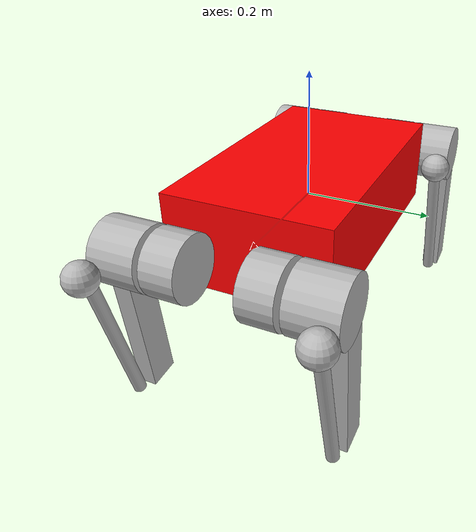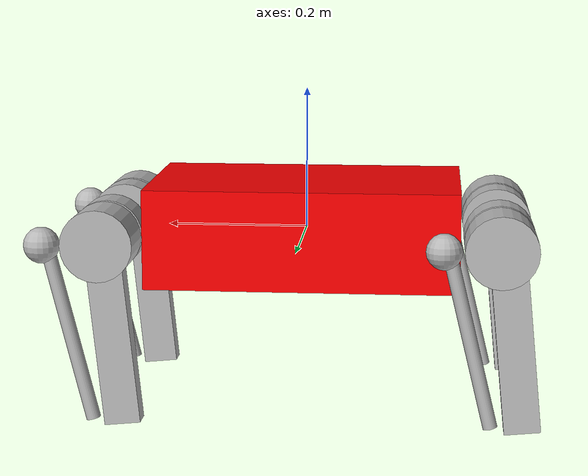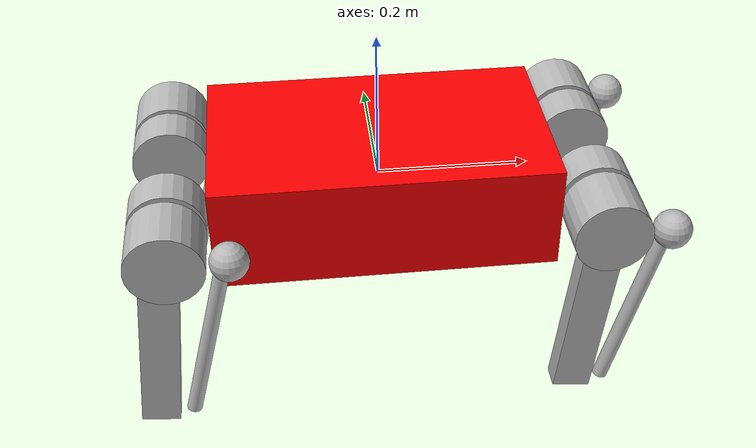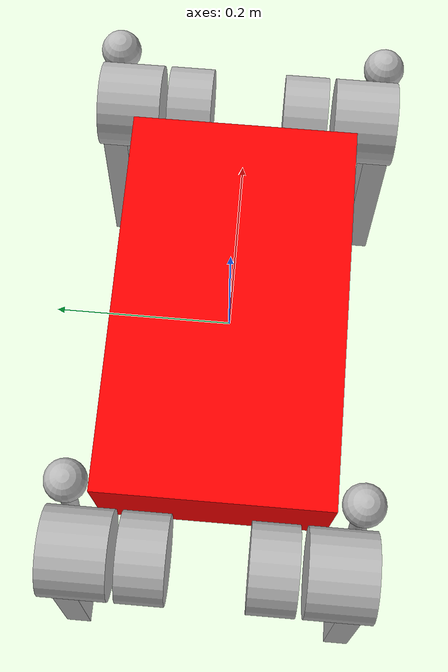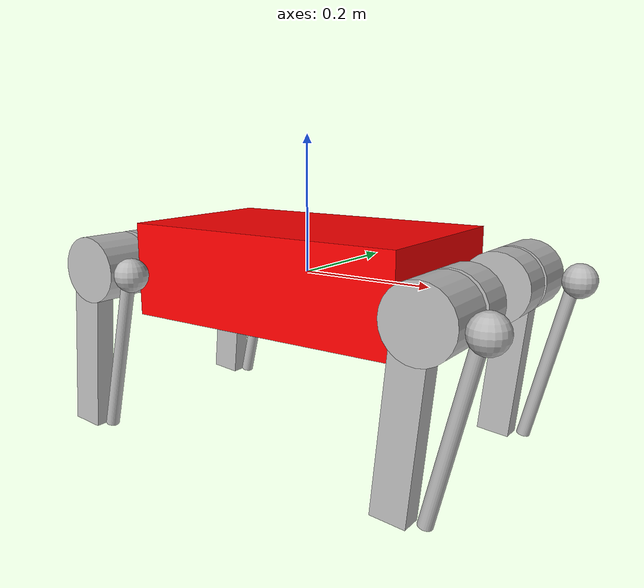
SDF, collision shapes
<sdf version='1.6'>
  <model name='Nomad'>
    <link name='base_link'>
      <pose frame=''>0 0 0 0 -0 0</pose>
      <inertial>
        <pose frame=''>0 0 0.000159 0 -0 0</pose>
        <mass>3.1127</mass>
        <inertia>
          <ixx>0.0303631</ixx>
          <ixy>-1.39577e-09</ixy>
          <ixz>5.33227e-17</ixz>
          <iyy>0.0951521</iyy>
          <iyz>-6.15067e-17</iyz>
          <izz>0.110368</izz>
        </inertia>
      </inertial>
      <collision name='base_link_collision'>
        <pose frame=''>0 0 0 0 -0 0</pose>
        <geometry>
          <box>
            <size>0.44 0.26 0.14</size>
          </box>
        </geometry>
      </collision>
      <visual name='base_link_visual'>
        <pose frame=''>0 0 0 0 -0 0</pose>
        <geometry>
          <mesh>
            <scale>0.001 0.001 0.001</scale>
            <uri>model://Nomad/meshes/base_link.stl</uri>
          </mesh>
        </geometry>
        <material>

          <ambient>1 0 0 1</ambient>

          <diffuse>1 0 0 1</diffuse>

          <specular>0.1 0.1 0.1 1</specular>

          <emissive>0 0 0 0</emissive>

        </material>
      </visual>
      <visual name='base_link_fixed_joint_lump__b_haa_motor_FL_visual_1'>
        <pose frame=''>0 0 0 0 -0 0</pose>
        <geometry>
          <mesh>
            <scale>0.001 0.001 0.001</scale>
            <uri>model://Nomad/meshes/b_haa_motor_FL.stl</uri>
          </mesh>
        </geometry>
      </visual>
      <visual name='base_link_fixed_joint_lump__b_haa_motor_FR_visual_2'>
        <pose frame=''>0 0 0 0 -0 0</pose>
        <geometry>
          <mesh>
            <scale>0.001 0.001 0.001</scale>
            <uri>model://Nomad/meshes/b_haa_motor_FR.stl</uri>
          </mesh>
        </geometry>
      </visual>
      <visual name='base_link_fixed_joint_lump__b_haa_motor_RL_visual_3'>
        <pose frame=''>0 0 0 0 -0 0</pose>
        <geometry>
          <mesh>
            <scale>0.001 0.001 0.001</scale>
            <uri>model://Nomad/meshes/b_haa_motor_RL.stl</uri>
          </mesh>
        </geometry>
      </visual>
      <visual name='base_link_fixed_joint_lump__b_haa_motor_RR_visual_4'>
        <pose frame=''>0 0 0 0 -0 0</pose>
        <geometry>
          <mesh>
            <scale>0.001 0.001 0.001</scale>
            <uri>model://Nomad/meshes/b_haa_motor_RR.stl</uri>
          </mesh>
        </geometry>
      </visual>
    </link>
    <link name='b_hfe_motor_FL'>
      <pose frame=''>0.217 0.07 0 0 -0 0</pose>
      <inertial>
        <pose frame=''>0.048378 0.004377 0.00043 0 -0 0</pose>
        <mass>0.287587</mass>
        <inertia>
          <ixx>0.000280355</ixx>
          <ixy>-1.2113e-05</ixy>
          <ixz>-1.18873e-06</ixz>
          <iyy>0.000473881</iyy>
          <iyz>3.05115e-06</iyz>
          <izz>0.000361322</izz>
        </inertia>
      </inertial>
      <collision name='b_hfe_motor_FL_collision'>
        <pose frame=''>0.058 0 0 1.5708 -0 0</pose>
        <geometry>
          <cylinder>
            <length>0.053</length>
            <radius>0.05</radius>
          </cylinder>
        </geometry>
      </collision>
      <visual name='b_hfe_motor_FL_visual'>
        <pose frame=''>-0.217 -0.07 -0 0 -0 0</pose>
        <geometry>
          <mesh>
            <scale>0.001 0.001 0.001</scale>
            <uri>model://Nomad/meshes/b_hfe_motor_FL.stl</uri>
          </mesh>
        </geometry>
      </visual>
    </link>
    <joint name='j_haa_FL' type='revolute'>
      <child>b_hfe_motor_FL</child>
      <parent>base_link</parent>
      <axis>
        <xyz>-1 0 0</xyz>
        <limit>
          <lower>-1e+16</lower>
          <upper>1e+16</upper>
        </limit>
        <dynamics>
          <damping>0.2</damping>
          <friction>0</friction>
          <spring_reference>0</spring_reference>
          <spring_stiffness>0</spring_stiffness>
        </dynamics>
        <use_parent_model_frame>1</use_parent_model_frame>
      </axis>
    </joint>
    <link name='b_kfe_motor_FL'>
      <pose frame=''>0.275 0.0945 0 0 -0 0</pose>
      <inertial>
        <pose frame=''>-0.008314 0.054672 -0.044525 0 -0 0</pose>
        <mass>0.589636</mass>
        <inertia>
          <ixx>0.00372285</ixx>
          <ixy>3.74238e-05</ixy>
          <ixz>-0.000336267</ixz>
          <iyy>0.00373948</iyy>
          <iyz>0.000433463</iyz>
          <izz>0.00073608</izz>
        </inertia>
      </inertial>
      <collision name='b_kfe_motor_FL_collision'>
        <pose frame=''>0 0.048 0 1.5708 -0 0</pose>
        <geometry>
          <cylinder>
            <length>0.075</length>
            <radius>0.05</radius>
          </cylinder>
        </geometry>
      </collision>
      <collision name='b_kfe_motor_FL_fixed_joint_lump__b_upper_leg_FL_collision_1'>
        <pose frame=''>-0.02 0.0693 -0.125 0 0.1 0</pose>
        <geometry>
          <box>
            <size>0.05 0.03 0.25</size>
          </box>
        </geometry>
      </collision>
      <visual name='b_kfe_motor_FL_visual'>
        <pose frame=''>-0.275 -0.0945 -0 0 -0 0</pose>
        <geometry>
          <mesh>
            <scale>0.001 0.001 0.001</scale>
            <uri>model://Nomad/meshes/b_kfe_motor_FL.stl</uri>
          </mesh>
        </geometry>
      </visual>
      <visual name='b_kfe_motor_FL_fixed_joint_lump__b_upper_leg_FL_visual_1'>
        <pose frame=''>-0.275 -0.0945 0 0 -0 0</pose>
        <geometry>
          <mesh>
            <scale>0.001 0.001 0.001</scale>
            <uri>model://Nomad/meshes/b_upper_leg_FL.stl</uri>
          </mesh>
        </geometry>
      </visual>
    </link>
    <joint name='j_hfe_FL' type='revolute'>
      <child>b_kfe_motor_FL</child>
      <parent>b_hfe_motor_FL</parent>
      <axis>
        <xyz>0 -1 0</xyz>
        <limit>
          <lower>-1e+16</lower>
          <upper>1e+16</upper>
        </limit>
        <dynamics>
          <damping>0.2</damping>
          <friction>0</friction>
          <spring_reference>0</spring_reference>
          <spring_stiffness>0</spring_stiffness>
        </dynamics>
        <use_parent_model_frame>1</use_parent_model_frame>
      </axis>
    </joint>
    <link name='b_lower_leg_FL'>
      <pose frame=''>0.27482 0.1545 -0.25 0 -0 0</pose>
      <inertial>
        <pose frame=''>0.037525 0.010921 0.12398 0 -0 0</pose>
        <mass>0.177139</mass>
        <inertia>
          <ixx>0.00210533</ixx>
          <ixy>-4.0181e-07</ixy>
          <ixz>-0.000615045</ixz>
          <iyy>0.00229935</iyy>
          <iyz>-1.39942e-06</iyz>
          <izz>0.000209299</izz>
        </inertia>
      </inertial>
      <collision name='b_lower_leg_FL_collision'>
        <pose frame=''>0.042 0.0095 0.13 0 0.24 0</pose>
        <geometry>
          <cylinder>
            <length>0.26</length>
            <radius>0.01</radius>
          </cylinder>
        </geometry>
      </collision>
      <collision name='b_lower_leg_FL_fixed_joint_lump__b_foot_FL_collision_1'>
        <pose frame=''>0.077613 0.011 0.24861 0 -0 0</pose>
        <geometry>
          <sphere>
            <radius>0.025</radius>
          </sphere>
        </geometry>
      </collision>
      <visual name='b_lower_leg_FL_visual'>
        <pose frame=''>-0.27482 -0.1545 0.25 0 -0 0</pose>
        <geometry>
          <mesh>
            <scale>0.001 0.001 0.001</scale>
            <uri>model://Nomad/meshes/b_lower_leg_FL.stl</uri>
          </mesh>
        </geometry>
      </visual>
      <visual name='b_lower_leg_FL_fixed_joint_lump__b_foot_FL_visual_1'>
        <pose frame=''>-0.27482 -0.1545 0.25 0 -0 0</pose>
        <geometry>
          <mesh>
            <scale>0.001 0.001 0.001</scale>
            <uri>model://Nomad/meshes/b_foot_FL.stl</uri>
          </mesh>
        </geometry>
      </visual>
    </link>
    <joint name='j_kfe_FL' type='revolute'>
      <child>b_lower_leg_FL</child>
      <parent>b_kfe_motor_FL</parent>
      <axis>
        <xyz>0 -1 0</xyz>
        <limit>
          <lower>-2.2</lower>
          <upper>0</upper>
          <effort>50</effort>
          <velocity>400</velocity>
        </limit>
        <dynamics>
          <damping>0.2</damping>
          <friction>0</friction>
          <spring_reference>0</spring_reference>
          <spring_stiffness>0</spring_stiffness>
        </dynamics>
        <use_parent_model_frame>1</use_parent_model_frame>
      </axis>
    </joint>
    <link name='b_hfe_motor_FR'>
      <pose frame=''>0.217 -0.07 0 0 -0 0</pose>
      <inertial>
        <pose frame=''>0.048378 -0.004377 0.00043 0 -0 0</pose>
        <mass>0.287587</mass>
        <inertia>
          <ixx>0.000280355</ixx>
          <ixy>1.2113e-05</ixy>
          <ixz>-1.18873e-06</ixz>
          <iyy>0.000473881</iyy>
          <iyz>-3.05115e-06</iyz>
          <izz>0.000361322</izz>
        </inertia>
      </inertial>
      <collision name='b_hfe_motor_FR_collision'>
        <pose frame=''>0.058 0 0 1.5708 -0 0</pose>
        <geometry>
          <cylinder>
            <length>0.053</length>
            <radius>0.05</radius>
          </cylinder>
        </geometry>
      </collision>
      <visual name='b_hfe_motor_FR_visual'>
        <pose frame=''>-0.217 0.07 -0 0 -0 0</pose>
        <geometry>
          <mesh>
            <scale>0.001 0.001 0.001</scale>
            <uri>model://Nomad/meshes/b_hfe_motor_FR.stl</uri>
          </mesh>
        </geometry>
      </visual>
    </link>
    <joint name='j_haa_FR' type='revolute'>
      <child>b_hfe_motor_FR</child>
      <parent>base_link</parent>
      <axis>
        <xyz>-1 0 0</xyz>
        <limit>
          <lower>-1e+16</lower>
          <upper>1e+16</upper>
        </limit>
        <dynamics>
          <damping>0.2</damping>
          <friction>0</friction>
          <spring_reference>0</spring_reference>
          <spring_stiffness>0</spring_stiffness>
        </dynamics>
        <use_parent_model_frame>1</use_parent_model_frame>
      </axis>
    </joint>
    <link name='b_kfe_motor_FR'>
      <pose frame=''>0.275 -0.0945 0 0 -0 0</pose>
      <inertial>
        <pose frame=''>-0.008314 -0.054672 -0.044525 0 -0 0</pose>
        <mass>0.589639</mass>
        <inertia>
          <ixx>0.0037229</ixx>
          <ixy>-3.74172e-05</ixy>
          <ixz>-0.000336241</ixz>
          <iyy>0.0037396</iyy>
          <iyz>-0.000433467</iyz>
          <izz>0.000736153</izz>
        </inertia>
      </inertial>
      <collision name='b_kfe_motor_FR_collision'>
        <pose frame=''>0 -0.048 0 1.5708 -0 0</pose>
        <geometry>
          <cylinder>
            <length>0.075</length>
            <radius>0.05</radius>
          </cylinder>
        </geometry>
      </collision>
      <collision name='b_kfe_motor_FR_fixed_joint_lump__b_upper_leg_FR_collision_1'>
        <pose frame=''>-0.02 -0.0693 -0.125 0 0.1 0</pose>
        <geometry>
          <box>
            <size>0.05 0.03 0.25</size>
          </box>
        </geometry>
      </collision>
      <visual name='b_kfe_motor_FR_visual'>
        <pose frame=''>-0.275 0.0945 -0 0 -0 0</pose>
        <geometry>
          <mesh>
            <scale>0.001 0.001 0.001</scale>
            <uri>model://Nomad/meshes/b_kfe_motor_FR.stl</uri>
          </mesh>
        </geometry>
      </visual>
      <visual name='b_kfe_motor_FR_fixed_joint_lump__b_upper_leg_FR_visual_1'>
        <pose frame=''>-0.275 0.0945 0 0 -0 0</pose>
        <geometry>
          <mesh>
            <scale>0.001 0.001 0.001</scale>
            <uri>model://Nomad/meshes/b_upper_leg_FR.stl</uri>
          </mesh>
        </geometry>
      </visual>
    </link>
    <joint name='j_hfe_FR' type='revolute'>
      <child>b_kfe_motor_FR</child>
      <parent>b_hfe_motor_FR</parent>
      <axis>
        <xyz>0 1 0</xyz>
        <limit>
          <lower>-1e+16</lower>
          <upper>1e+16</upper>
        </limit>
        <dynamics>
          <damping>0.2</damping>
          <friction>0</friction>
          <spring_reference>0</spring_reference>
          <spring_stiffness>0</spring_stiffness>
        </dynamics>
        <use_parent_model_frame>1</use_parent_model_frame>
      </axis>
    </joint>
    <link name='b_lower_leg_FR'>
      <pose frame=''>0.27482 -0.1545 -0.25 0 -0 0</pose>
      <inertial>
        <pose frame=''>0.037525 -0.011079 0.12398 0 -0 0</pose>
        <mass>0.177139</mass>
        <inertia>
          <ixx>0.00210533</ixx>
          <ixy>-4.0181e-07</ixy>
          <ixz>-0.000615045</ixz>
          <iyy>0.00229935</iyy>
          <iyz>-1.39942e-06</iyz>
          <izz>0.000209299</izz>
        </inertia>
      </inertial>
      <collision name='b_lower_leg_FR_collision'>
        <pose frame=''>0.042 -0.0095 0.13 0 0.24 0</pose>
        <geometry>
          <cylinder>
            <length>0.26</length>
            <radius>0.01</radius>
          </cylinder>
        </geometry>
      </collision>
      <collision name='b_lower_leg_FR_fixed_joint_lump__b_foot_FR_collision_1'>
        <pose frame=''>0.077613 -0.011 0.24861 0 -0 0</pose>
        <geometry>
          <sphere>
            <radius>0.025</radius>
          </sphere>
        </geometry>
      </collision>
      <visual name='b_lower_leg_FR_visual'>
        <pose frame=''>-0.27482 0.1545 0.25 0 -0 0</pose>
        <geometry>
          <mesh>
            <scale>0.001 0.001 0.001</scale>
            <uri>model://Nomad/meshes/b_lower_leg_FR.stl</uri>
          </mesh>
        </geometry>
      </visual>
      <visual name='b_lower_leg_FR_fixed_joint_lump__b_foot_FR_visual_1'>
        <pose frame=''>-0.27482 0.1545 0.25 0 -0 0</pose>
        <geometry>
          <mesh>
            <scale>0.001 0.001 0.001</scale>
            <uri>model://Nomad/meshes/b_foot_FR.stl</uri>
          </mesh>
        </geometry>
      </visual>
    </link>
    <joint name='j_kfe_FR' type='revolute'>
      <child>b_lower_leg_FR</child>
      <parent>b_kfe_motor_FR</parent>
      <axis>
        <xyz>0 1 0</xyz>
        <limit>
          <lower>0</lower>
          <upper>2.2</upper>
          <effort>50</effort>
          <velocity>400</velocity>
        </limit>
        <dynamics>
          <damping>0.2</damping>
          <friction>0</friction>
          <spring_reference>0</spring_reference>
          <spring_stiffness>0</spring_stiffness>
        </dynamics>
        <use_parent_model_frame>1</use_parent_model_frame>
      </axis>
    </joint>
    <link name='b_hfe_motor_RL'>
      <pose frame=''>-0.217 0.07 0 0 -0 0</pose>
      <inertial>
        <pose frame=''>-0.048378 0.004377 0.00043 0 -0 0</pose>
        <mass>0.287587</mass>
        <inertia>
          <ixx>0.000280355</ixx>
          <ixy>1.2113e-05</ixy>
          <ixz>1.18873e-06</ixz>
          <iyy>0.000473881</iyy>
          <iyz>3.05115e-06</iyz>
          <izz>0.000361322</izz>
        </inertia>
      </inertial>
      <collision name='b_hfe_motor_RL_collision'>
        <pose frame=''>-0.058 0 0 1.5708 -0 0</pose>
        <geometry>
          <cylinder>
            <length>0.053</length>
            <radius>0.05</radius>
          </cylinder>
        </geometry>
      </collision>
      <visual name='b_hfe_motor_RL_visual'>
        <pose frame=''>0.217 -0.07 -0 0 -0 0</pose>
        <geometry>
          <mesh>
            <scale>0.001 0.001 0.001</scale>
            <uri>model://Nomad/meshes/b_hfe_motor_RL.stl</uri>
          </mesh>
        </geometry>
      </visual>
    </link>
    <joint name='j_haa_RL' type='revolute'>
      <child>b_hfe_motor_RL</child>
      <parent>base_link</parent>
      <axis>
        <xyz>1 0 0</xyz>
        <limit>
          <lower>-1e+16</lower>
          <upper>1e+16</upper>
        </limit>
        <dynamics>
          <damping>0.2</damping>
          <friction>0</friction>
          <spring_reference>0</spring_reference>
          <spring_stiffness>0</spring_stiffness>
        </dynamics>
        <use_parent_model_frame>1</use_parent_model_frame>
      </axis>
    </joint>
    <link name='b_kfe_motor_RL'>
      <pose frame=''>-0.275 0.0945 0 0 -0 0</pose>
      <inertial>
        <pose frame=''>-0.008314 0.054672 -0.044525 0 -0 0</pose>
        <mass>0.589636</mass>
        <inertia>
          <ixx>0.00372285</ixx>
          <ixy>3.74238e-05</ixy>
          <ixz>-0.000336267</ixz>
          <iyy>0.00373948</iyy>
          <iyz>0.000433463</iyz>
          <izz>0.00073608</izz>
        </inertia>
      </inertial>
      <collision name='b_kfe_motor_RL_collision'>
        <pose frame=''>0 0.048 0 1.5708 -0 0</pose>
        <geometry>
          <cylinder>
            <length>0.075</length>
            <radius>0.05</radius>
          </cylinder>
        </geometry>
      </collision>
      <collision name='b_kfe_motor_RL_fixed_joint_lump__b_upper_leg_RL_collision_1'>
        <pose frame=''>-0.02 0.0693 -0.125 0 0.1 0</pose>
        <geometry>
          <box>
            <size>0.05 0.03 0.25</size>
          </box>
        </geometry>
      </collision>
      <visual name='b_kfe_motor_RL_visual'>
        <pose frame=''>0.275 -0.0945 0 0 -0 0</pose>
        <geometry>
          <mesh>
            <scale>0.001 0.001 0.001</scale>
            <uri>model://Nomad/meshes/b_kfe_motor_RL.stl</uri>
          </mesh>
        </geometry>
      </visual>
      <visual name='b_kfe_motor_RL_fixed_joint_lump__b_upper_leg_RL_visual_1'>
        <pose frame=''>0.275 -0.0945 0 0 -0 0</pose>
        <geometry>
          <mesh>
            <scale>0.001 0.001 0.001</scale>
            <uri>model://Nomad/meshes/b_upper_leg_RL.stl</uri>
          </mesh>
        </geometry>
      </visual>
    </link>
    <joint name='j_hfe_RL' type='revolute'>
      <child>b_kfe_motor_RL</child>
      <parent>b_hfe_motor_RL</parent>
      <axis>
        <xyz>0 -1 0</xyz>
        <limit>
          <lower>-1e+16</lower>
          <upper>1e+16</upper>
        </limit>
        <dynamics>
          <damping>0.2</damping>
          <friction>0</friction>
          <spring_reference>0</spring_reference>
          <spring_stiffness>0</spring_stiffness>
        </dynamics>
        <use_parent_model_frame>1</use_parent_model_frame>
      </axis>
    </joint>
    <link name='b_lower_leg_RL'>
      <pose frame=''>-0.27518 0.1545 -0.25 0 -0 0</pose>
      <inertial>
        <pose frame=''>0.037525 0.010921 0.12398 0 -0 0</pose>
        <mass>0.177139</mass>
        <inertia>
          <ixx>0.00210533</ixx>
          <ixy>-4.0181e-07</ixy>
          <ixz>-0.000615045</ixz>
          <iyy>0.00229935</iyy>
          <iyz>-1.39942e-06</iyz>
          <izz>0.000209299</izz>
        </inertia>
      </inertial>
      <collision name='b_lower_leg_RL_collision'>
        <pose frame=''>0.042 0.0095 0.13 0 0.24 0</pose>
        <geometry>
          <cylinder>
            <length>0.26</length>
            <radius>0.01</radius>
          </cylinder>
        </geometry>
      </collision>
      <collision name='b_lower_leg_RL_fixed_joint_lump__b_foot_RL_collision_1'>
        <pose frame=''>0.077613 0.011 0.24861 0 -0 0</pose>
        <geometry>
          <sphere>
            <radius>0.025</radius>
          </sphere>
        </geometry>
      </collision>
      <visual name='b_lower_leg_RL_visual'>
        <pose frame=''>0.27518 -0.1545 0.25 0 -0 0</pose>
        <geometry>
          <mesh>
            <scale>0.001 0.001 0.001</scale>
            <uri>model://Nomad/meshes/b_lower_leg_RL.stl</uri>
          </mesh>
        </geometry>
      </visual>
      <visual name='b_lower_leg_RL_fixed_joint_lump__b_foot_RL_visual_1'>
        <pose frame=''>0.27518 -0.1545 0.25 0 -0 0</pose>
        <geometry>
          <mesh>
            <scale>0.001 0.001 0.001</scale>
            <uri>model://Nomad/meshes/b_foot_RL.stl</uri>
          </mesh>
        </geometry>
      </visual>
    </link>
    <joint name='j_kfe_RL' type='revolute'>
      <child>b_lower_leg_RL</child>
      <parent>b_kfe_motor_RL</parent>
      <axis>
        <xyz>0 -1 0</xyz>
        <limit>
          <lower>-2.2</lower>
          <upper>0</upper>
          <effort>50</effort>
          <velocity>400</velocity>
        </limit>
        <dynamics>
          <damping>0.2</damping>
          <friction>0</friction>
          <spring_reference>0</spring_reference>
          <spring_stiffness>0</spring_stiffness>
        </dynamics>
        <use_parent_model_frame>1</use_parent_model_frame>
      </axis>
    </joint>
    <link name='b_hfe_motor_RR'>
      <pose frame=''>-0.217 -0.07 0 0 -0 0</pose>
      <inertial>
        <pose frame=''>-0.048378 -0.004377 0.00043 0 -0 0</pose>
        <mass>0.287587</mass>
        <inertia>
          <ixx>0.000280355</ixx>
          <ixy>-1.2113e-05</ixy>
          <ixz>1.18873e-06</ixz>
          <iyy>0.000473881</iyy>
          <iyz>-3.05115e-06</iyz>
          <izz>0.000361322</izz>
        </inertia>
      </inertial>
      <collision name='b_hfe_motor_RR_collision'>
        <pose frame=''>-0.058 0 0 1.5708 -0 0</pose>
        <geometry>
          <cylinder>
            <length>0.053</length>
            <radius>0.05</radius>
          </cylinder>
        </geometry>
      </collision>
      <visual name='b_hfe_motor_RR_visual'>
        <pose frame=''>0.217 0.07 -0 0 -0 0</pose>
        <geometry>
          <mesh>
            <scale>0.001 0.001 0.001</scale>
            <uri>model://Nomad/meshes/b_hfe_motor_RR.stl</uri>
          </mesh>
        </geometry>
      </visual>
    </link>
    <joint name='j_haa_RR' type='revolute'>
      <child>b_hfe_motor_RR</child>
      <parent>base_link</parent>
      <axis>
        <xyz>1 0 0</xyz>
        <limit>
          <lower>-1e+16</lower>
          <upper>1e+16</upper>
        </limit>
        <dynamics>
          <damping>0.2</damping>
          <friction>0</friction>
          <spring_reference>0</spring_reference>
          <spring_stiffness>0</spring_stiffness>
        </dynamics>
        <use_parent_model_frame>1</use_parent_model_frame>
      </axis>
    </joint>
    <link name='b_kfe_motor_RR'>
      <pose frame=''>-0.275 -0.0945 0 0 -0 0</pose>
      <inertial>
        <pose frame=''>-0.008314 -0.054672 -0.044525 0 -0 0</pose>
        <mass>0.589639</mass>
        <inertia>
          <ixx>0.0037229</ixx>
          <ixy>-3.74172e-05</ixy>
          <ixz>-0.000336241</ixz>
          <iyy>0.0037396</iyy>
          <iyz>-0.000433467</iyz>
          <izz>0.000736153</izz>
        </inertia>
      </inertial>
      <collision name='b_kfe_motor_RR_collision'>
        <pose frame=''>0 -0.048 0 1.5708 -0 0</pose>
        <geometry>
          <cylinder>
            <length>0.075</length>
            <radius>0.05</radius>
          </cylinder>
        </geometry>
      </collision>
      <collision name='b_kfe_motor_RR_fixed_joint_lump__b_upper_leg_RR_collision_1'>
        <pose frame=''>-0.02 -0.0693 -0.125 0 0.1 0</pose>
        <geometry>
          <box>
            <size>0.05 0.03 0.25</size>
          </box>
        </geometry>
      </collision>
      <visual name='b_kfe_motor_RR_visual'>
        <pose frame=''>0.275 0.0945 0 0 -0 0</pose>
        <geometry>
          <mesh>
            <scale>0.001 0.001 0.001</scale>
            <uri>model://Nomad/meshes/b_kfe_motor_RR.stl</uri>
          </mesh>
        </geometry>
      </visual>
      <visual name='b_kfe_motor_RR_fixed_joint_lump__b_upper_leg_RR_visual_1'>
        <pose frame=''>0.275 0.0945 0 0 -0 0</pose>
        <geometry>
          <mesh>
            <scale>0.001 0.001 0.001</scale>
            <uri>model://Nomad/meshes/b_upper_leg_RR.stl</uri>
          </mesh>
        </geometry>
      </visual>
    </link>
    <joint name='j_hfe_RR' type='revolute'>
      <child>b_kfe_motor_RR</child>
      <parent>b_hfe_motor_RR</parent>
      <axis>
        <xyz>0 1 0</xyz>
        <limit>
          <lower>-1e+16</lower>
          <upper>1e+16</upper>
        </limit>
        <dynamics>
          <damping>0.2</damping>
          <friction>0</friction>
          <spring_reference>0</spring_reference>
          <spring_stiffness>0</spring_stiffness>
        </dynamics>
        <use_parent_model_frame>1</use_parent_model_frame>
      </axis>
    </joint>
    <link name='b_lower_leg_RR'>
      <pose frame=''>-0.27518 -0.1545 -0.25 0 -0 0</pose>
      <inertial>
        <pose frame=''>0.037525 -0.011079 0.12398 0 -0 0</pose>
        <mass>0.177139</mass>
        <inertia>
          <ixx>0.00210533</ixx>
          <ixy>-4.0181e-07</ixy>
          <ixz>-0.000615045</ixz>
          <iyy>0.00229935</iyy>
          <iyz>-1.39942e-06</iyz>
          <izz>0.000209299</izz>
        </inertia>
      </inertial>
      <collision name='b_lower_leg_RR_collision'>
        <pose frame=''>0.042 -0.0095 0.13 0 0.24 0</pose>
        <geometry>
          <cylinder>
            <length>0.26</length>
            <radius>0.01</radius>
          </cylinder>
        </geometry>
      </collision>
      <collision name='b_lower_leg_RR_fixed_joint_lump__b_foot_RR_collision_1'>
        <pose frame=''>0.077613 -0.011 0.24861 0 -0 0</pose>
        <geometry>
          <sphere>
            <radius>0.025</radius>
          </sphere>
        </geometry>
      </collision>
      <visual name='b_lower_leg_RR_visual'>
        <pose frame=''>0.27518 0.1545 0.25 0 -0 0</pose>
        <geometry>
          <mesh>
            <scale>0.001 0.001 0.001</scale>
            <uri>model://Nomad/meshes/b_lower_leg_RR.stl</uri>
          </mesh>
        </geometry>
      </visual>
      <visual name='b_lower_leg_RR_fixed_joint_lump__b_foot_RR_visual_1'>
        <pose frame=''>0.27518 0.1545 0.25 0 -0 0</pose>
        <geometry>
          <mesh>
            <scale>0.001 0.001 0.001</scale>
            <uri>model://Nomad/meshes/b_foot_RR.stl</uri>
          </mesh>
        </geometry>
      </visual>
    </link>
    <joint name='j_kfe_RR' type='revolute'>
      <child>b_lower_leg_RR</child>
      <parent>b_kfe_motor_RR</parent>
      <axis>
        <xyz>0 1 0</xyz>
        <limit>
          <lower>0</lower>
          <upper>2.2</upper>
          <effort>50</effort>
          <velocity>400</velocity>
        </limit>
        <dynamics>
          <damping>0.2</damping>
          <friction>0</friction>
          <spring_reference>0</spring_reference>
          <spring_stiffness>0</spring_stiffness>
        </dynamics>
        <use_parent_model_frame>1</use_parent_model_frame>
      </axis>
    </joint>
  </model>
</sdf>
